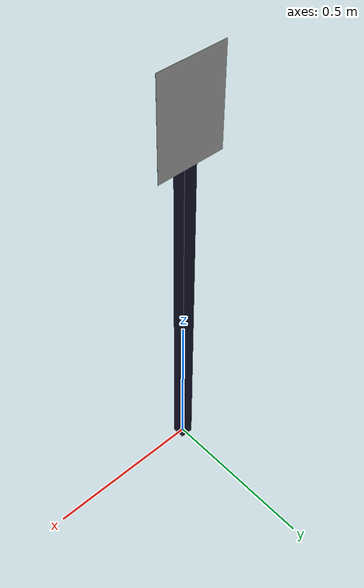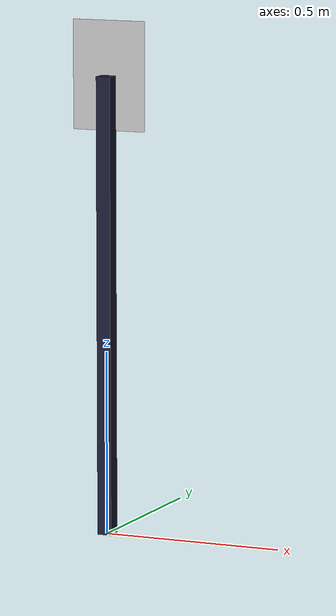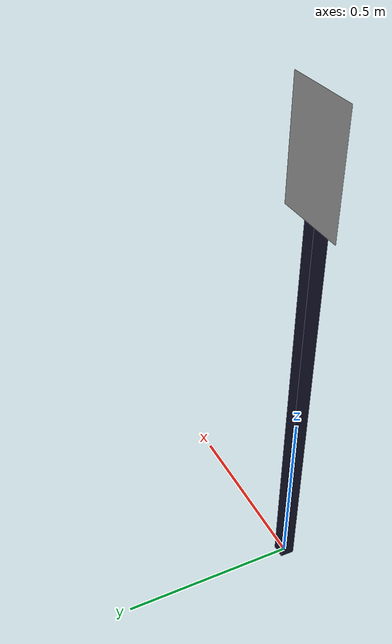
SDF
<?xml version='1.0'?>
<sdf version="1.5">
  <model name="calibration_sign">
    <pose>0 0 0 0 0 3.14</pose>
    <static>true</static>
    <link name="sign">
      <visual name="sign">
        <pose>0 -0.02 1.25 1.57 0 0</pose>
        <geometry>
          <plane>
            <normal>0 0 1</normal>
            <size>0.21 0.297</size>
          </plane>
        </geometry>
        <material>
          <script>
            <uri>model://calibration_sign/materials/scripts</uri>
            <uri>model://calibration_sign/materials/textures</uri>
            <name>calibration_sign/image</name>
          </script>
        </material>
      </visual>
    </link>
    <link name="pole">
      <visual name="pole">
      <pose>0 0 0.625 0 0 0</pose>
        <geometry>
          <box>
            <size>0.04 0.04 1.25</size>
          </box>
        </geometry>
        <material>
          <ambient>0.1 0.1 0.1 1</ambient>
          <diffuse>0.1 0.1 0.2 1</diffuse>
          <specular>0 0 0 0</specular>
          <emissive>0 0 0 1</emissive>
        </material>
      </visual>
    </link>
  </model>
</sdf>
